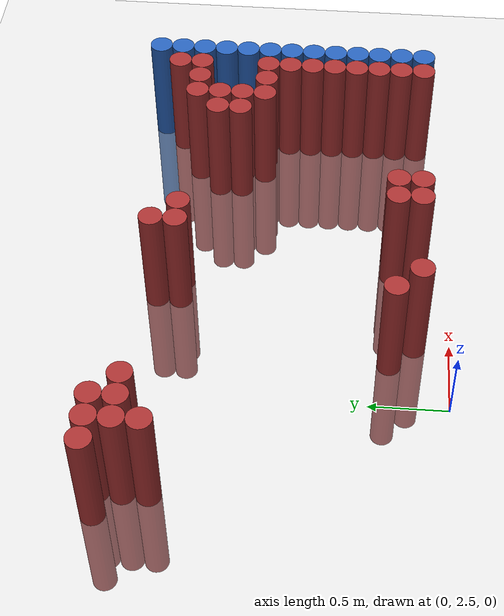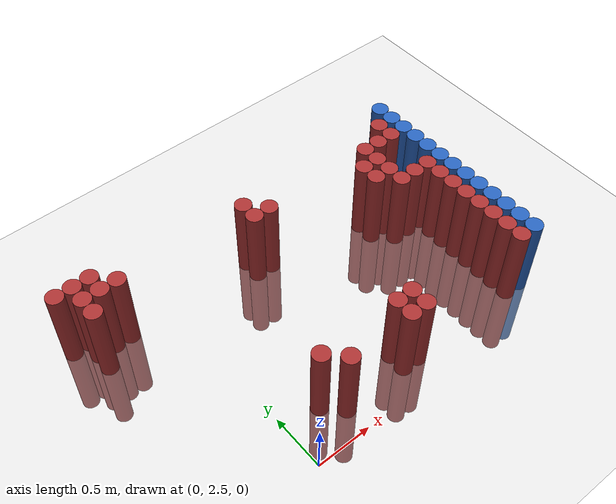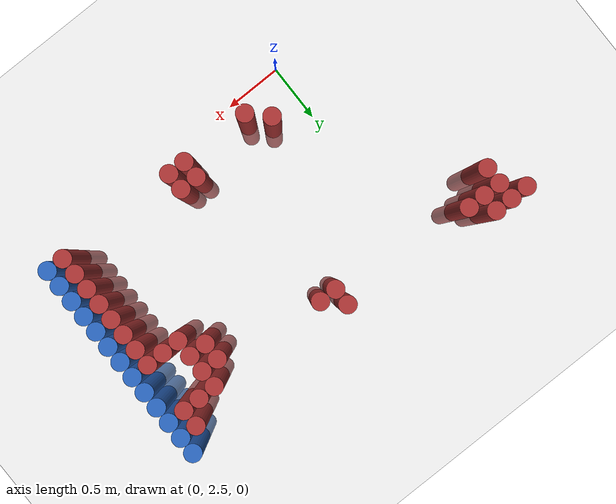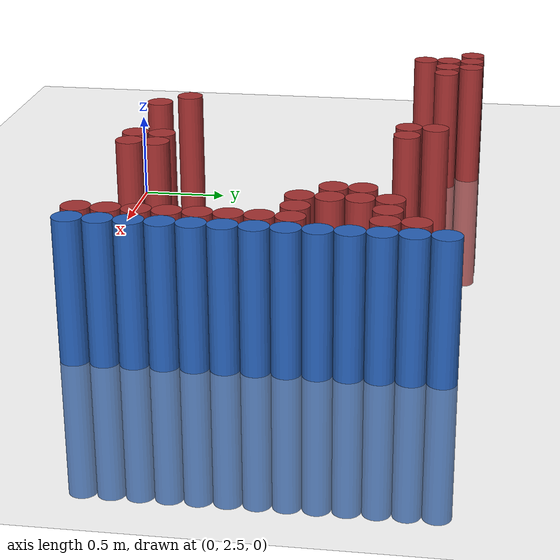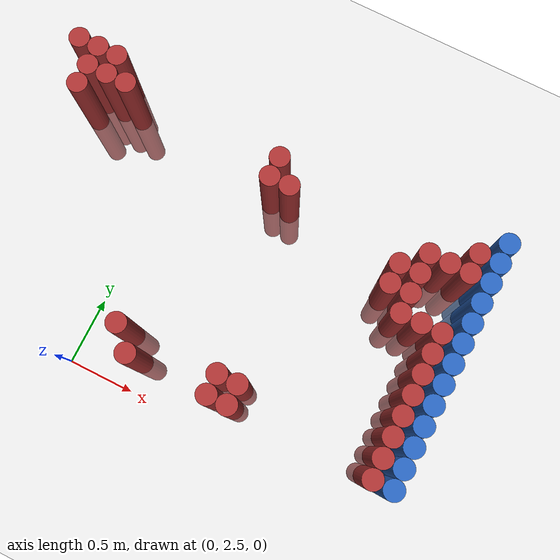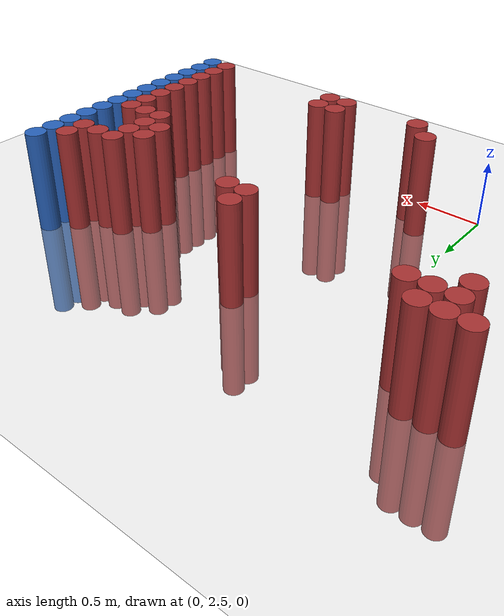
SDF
<sdf version="1.6">
 <world name="default">
  <model name="ground_plane">
   <static>1</static>
   <link name="link">
    <collision name="collision">
     <geometry><plane><normal>0 0 1</normal><size>100 100</size></plane></geometry>
     <surface><friction><ode><mu>100</mu><mu2>50</mu2></ode></friction></surface>
    </collision>
    <visual name="visual">
     <cast_shadows>0</cast_shadows>
     <geometry><plane><normal>0 0 1</normal><size>100 100</size></plane></geometry>
     <material>
      <script><uri>file://media/materials/scripts/gazebo.material</uri><name>Gazebo/Grey</name></script>
     </material>
    </visual>
   </link>
  </model>
  <model name="unit_cylinder_159">
   <static>1</static>
   <pose>-0.875000 4.525000 0.000000 0.000000 0.000000 0.000000</pose>
   <link name="link">
    <inertial>
     <mass>1</mass>
     <inertia><ixx>0.145833</ixx><ixy>0</ixy><ixz>0</ixz><iyy>0.145833</iyy><iyz>0</iyz><izz>0.125</izz></inertia>
    </inertial>
    <collision name="collision">
     <geometry><cylinder><radius>0.075000</radius><length>1.5</length></cylinder></geometry>
    </collision>
    <visual name="visual">
     <geometry><cylinder><radius>0.075000</radius><length>1.5</length></cylinder></geometry>
     <material>
      <ambient>0.648000 0.192000 0.192000 1</ambient>
      <diffuse>0.648000 0.192000 0.192000 1</diffuse>
     </material>
     <material>
      <script><name>Gazebo/Grey</name><uri>file://media/materials/scripts/gazebo.material</uri></script>
     </material>
    </visual>
   </link>
  </model>
  <model name="unit_cylinder_160">
   <static>1</static>
   <pose>-0.725000 4.225000 0.000000 0.000000 0.000000 0.000000</pose>
   <link name="link">
    <inertial>
     <mass>1</mass>
     <inertia><ixx>0.145833</ixx><ixy>0</ixy><ixz>0</ixz><iyy>0.145833</iyy><iyz>0</iyz><izz>0.125</izz></inertia>
    </inertial>
    <collision name="collision">
     <geometry><cylinder><radius>0.075000</radius><length>1.5</length></cylinder></geometry>
    </collision>
    <visual name="visual">
     <geometry><cylinder><radius>0.075000</radius><length>1.5</length></cylinder></geometry>
     <material>
      <ambient>0.648000 0.192000 0.192000 1</ambient>
      <diffuse>0.648000 0.192000 0.192000 1</diffuse>
     </material>
     <material>
      <script><name>Gazebo/Grey</name><uri>file://media/materials/scripts/gazebo.material</uri></script>
     </material>
    </visual>
   </link>
  </model>
  <model name="unit_cylinder_161">
   <static>1</static>
   <pose>-0.725000 4.375000 0.000000 0.000000 0.000000 0.000000</pose>
   <link name="link">
    <inertial>
     <mass>1</mass>
     <inertia><ixx>0.145833</ixx><ixy>0</ixy><ixz>0</ixz><iyy>0.145833</iyy><iyz>0</iyz><izz>0.125</izz></inertia>
    </inertial>
    <collision name="collision">
     <geometry><cylinder><radius>0.075000</radius><length>1.5</length></cylinder></geometry>
    </collision>
    <visual name="visual">
     <geometry><cylinder><radius>0.075000</radius><length>1.5</length></cylinder></geometry>
     <material>
      <ambient>0.648000 0.192000 0.192000 1</ambient>
      <diffuse>0.648000 0.192000 0.192000 1</diffuse>
     </material>
     <material>
      <script><name>Gazebo/Grey</name><uri>file://media/materials/scripts/gazebo.material</uri></script>
     </material>
    </visual>
   </link>
  </model>
  <model name="unit_cylinder_162">
   <static>1</static>
   <pose>-0.725000 4.525000 0.000000 0.000000 0.000000 0.000000</pose>
   <link name="link">
    <inertial>
     <mass>1</mass>
     <inertia><ixx>0.145833</ixx><ixy>0</ixy><ixz>0</ixz><iyy>0.145833</iyy><iyz>0</iyz><izz>0.125</izz></inertia>
    </inertial>
    <collision name="collision">
     <geometry><cylinder><radius>0.075000</radius><length>1.5</length></cylinder></geometry>
    </collision>
    <visual name="visual">
     <geometry><cylinder><radius>0.075000</radius><length>1.5</length></cylinder></geometry>
     <material>
      <ambient>0.648000 0.192000 0.192000 1</ambient>
      <diffuse>0.648000 0.192000 0.192000 1</diffuse>
     </material>
     <material>
      <script><name>Gazebo/Grey</name><uri>file://media/materials/scripts/gazebo.material</uri></script>
     </material>
    </visual>
   </link>
  </model>
  <model name="unit_cylinder_163">
   <static>1</static>
   <pose>-0.575000 4.375000 0.000000 0.000000 0.000000 0.000000</pose>
   <link name="link">
    <inertial>
     <mass>1</mass>
     <inertia><ixx>0.145833</ixx><ixy>0</ixy><ixz>0</ixz><iyy>0.145833</iyy><iyz>0</iyz><izz>0.125</izz></inertia>
    </inertial>
    <collision name="collision">
     <geometry><cylinder><radius>0.075000</radius><length>1.5</length></cylinder></geometry>
    </collision>
    <visual name="visual">
     <geometry><cylinder><radius>0.075000</radius><length>1.5</length></cylinder></geometry>
     <material>
      <ambient>0.648000 0.192000 0.192000 1</ambient>
      <diffuse>0.648000 0.192000 0.192000 1</diffuse>
     </material>
     <material>
      <script><name>Gazebo/Grey</name><uri>file://media/materials/scripts/gazebo.material</uri></script>
     </material>
    </visual>
   </link>
  </model>
  <model name="unit_cylinder_164">
   <static>1</static>
   <pose>-0.575000 4.525000 0.000000 0.000000 0.000000 0.000000</pose>
   <link name="link">
    <inertial>
     <mass>1</mass>
     <inertia><ixx>0.145833</ixx><ixy>0</ixy><ixz>0</ixz><iyy>0.145833</iyy><iyz>0</iyz><izz>0.125</izz></inertia>
    </inertial>
    <collision name="collision">
     <geometry><cylinder><radius>0.075000</radius><length>1.5</length></cylinder></geometry>
    </collision>
    <visual name="visual">
     <geometry><cylinder><radius>0.075000</radius><length>1.5</length></cylinder></geometry>
     <material>
      <ambient>0.648000 0.192000 0.192000 1</ambient>
      <diffuse>0.648000 0.192000 0.192000 1</diffuse>
     </material>
     <material>
      <script><name>Gazebo/Grey</name><uri>file://media/materials/scripts/gazebo.material</uri></script>
     </material>
    </visual>
   </link>
  </model>
  <model name="unit_cylinder_165">
   <static>1</static>
   <pose>-0.425000 4.375000 0.000000 0.000000 0.000000 0.000000</pose>
   <link name="link">
    <inertial>
     <mass>1</mass>
     <inertia><ixx>0.145833</ixx><ixy>0</ixy><ixz>0</ixz><iyy>0.145833</iyy><iyz>0</iyz><izz>0.125</izz></inertia>
    </inertial>
    <collision name="collision">
     <geometry><cylinder><radius>0.075000</radius><length>1.5</length></cylinder></geometry>
    </collision>
    <visual name="visual">
     <geometry><cylinder><radius>0.075000</radius><length>1.5</length></cylinder></geometry>
     <material>
      <ambient>0.648000 0.192000 0.192000 1</ambient>
      <diffuse>0.648000 0.192000 0.192000 1</diffuse>
     </material>
     <material>
      <script><name>Gazebo/Grey</name><uri>file://media/materials/scripts/gazebo.material</uri></script>
     </material>
    </visual>
   </link>
  </model>
  <model name="unit_cylinder_181">
   <static>1</static>
   <pose>0.325000 2.875000 0.000000 0.000000 0.000000 0.000000</pose>
   <link name="link">
    <inertial>
     <mass>1</mass>
     <inertia><ixx>0.145833</ixx><ixy>0</ixy><ixz>0</ixz><iyy>0.145833</iyy><iyz>0</iyz><izz>0.125</izz></inertia>
    </inertial>
    <collision name="collision">
     <geometry><cylinder><radius>0.075000</radius><length>1.5</length></cylinder></geometry>
    </collision>
    <visual name="visual">
     <geometry><cylinder><radius>0.075000</radius><length>1.5</length></cylinder></geometry>
     <material>
      <ambient>0.648000 0.192000 0.192000 1</ambient>
      <diffuse>0.648000 0.192000 0.192000 1</diffuse>
     </material>
     <material>
      <script><name>Gazebo/Grey</name><uri>file://media/materials/scripts/gazebo.material</uri></script>
     </material>
    </visual>
   </link>
  </model>
  <model name="unit_cylinder_184">
   <static>1</static>
   <pose>0.475000 2.725000 0.000000 0.000000 0.000000 0.000000</pose>
   <link name="link">
    <inertial>
     <mass>1</mass>
     <inertia><ixx>0.145833</ixx><ixy>0</ixy><ixz>0</ixz><iyy>0.145833</iyy><iyz>0</iyz><izz>0.125</izz></inertia>
    </inertial>
    <collision name="collision">
     <geometry><cylinder><radius>0.075000</radius><length>1.5</length></cylinder></geometry>
    </collision>
    <visual name="visual">
     <geometry><cylinder><radius>0.075000</radius><length>1.5</length></cylinder></geometry>
     <material>
      <ambient>0.648000 0.192000 0.192000 1</ambient>
      <diffuse>0.648000 0.192000 0.192000 1</diffuse>
     </material>
     <material>
      <script><name>Gazebo/Grey</name><uri>file://media/materials/scripts/gazebo.material</uri></script>
     </material>
    </visual>
   </link>
  </model>
  <model name="unit_cylinder_187">
   <static>1</static>
   <pose>0.775000 4.225000 0.000000 0.000000 0.000000 0.000000</pose>
   <link name="link">
    <inertial>
     <mass>1</mass>
     <inertia><ixx>0.145833</ixx><ixy>0</ixy><ixz>0</ixz><iyy>0.145833</iyy><iyz>0</iyz><izz>0.125</izz></inertia>
    </inertial>
    <collision name="collision">
     <geometry><cylinder><radius>0.075000</radius><length>1.5</length></cylinder></geometry>
    </collision>
    <visual name="visual">
     <geometry><cylinder><radius>0.075000</radius><length>1.5</length></cylinder></geometry>
     <material>
      <ambient>0.648000 0.192000 0.192000 1</ambient>
      <diffuse>0.648000 0.192000 0.192000 1</diffuse>
     </material>
     <material>
      <script><name>Gazebo/Grey</name><uri>file://media/materials/scripts/gazebo.material</uri></script>
     </material>
    </visual>
   </link>
  </model>
  <model name="unit_cylinder_188">
   <static>1</static>
   <pose>0.775000 4.375000 0.000000 0.000000 0.000000 0.000000</pose>
   <link name="link">
    <inertial>
     <mass>1</mass>
     <inertia><ixx>0.145833</ixx><ixy>0</ixy><ixz>0</ixz><iyy>0.145833</iyy><iyz>0</iyz><izz>0.125</izz></inertia>
    </inertial>
    <collision name="collision">
     <geometry><cylinder><radius>0.075000</radius><length>1.5</length></cylinder></geometry>
    </collision>
    <visual name="visual">
     <geometry><cylinder><radius>0.075000</radius><length>1.5</length></cylinder></geometry>
     <material>
      <ambient>0.648000 0.192000 0.192000 1</ambient>
      <diffuse>0.648000 0.192000 0.192000 1</diffuse>
     </material>
     <material>
      <script><name>Gazebo/Grey</name><uri>file://media/materials/scripts/gazebo.material</uri></script>
     </material>
    </visual>
   </link>
  </model>
  <model name="unit_cylinder_189">
   <static>1</static>
   <pose>0.925000 4.225000 0.000000 0.000000 0.000000 0.000000</pose>
   <link name="link">
    <inertial>
     <mass>1</mass>
     <inertia><ixx>0.145833</ixx><ixy>0</ixy><ixz>0</ixz><iyy>0.145833</iyy><iyz>0</iyz><izz>0.125</izz></inertia>
    </inertial>
    <collision name="collision">
     <geometry><cylinder><radius>0.075000</radius><length>1.5</length></cylinder></geometry>
    </collision>
    <visual name="visual">
     <geometry><cylinder><radius>0.075000</radius><length>1.5</length></cylinder></geometry>
     <material>
      <ambient>0.648000 0.192000 0.192000 1</ambient>
      <diffuse>0.648000 0.192000 0.192000 1</diffuse>
     </material>
     <material>
      <script><name>Gazebo/Grey</name><uri>file://media/materials/scripts/gazebo.material</uri></script>
     </material>
    </visual>
   </link>
  </model>
  <model name="unit_cylinder_191">
   <static>1</static>
   <pose>1.075000 2.725000 0.000000 0.000000 0.000000 0.000000</pose>
   <link name="link">
    <inertial>
     <mass>1</mass>
     <inertia><ixx>0.145833</ixx><ixy>0</ixy><ixz>0</ixz><iyy>0.145833</iyy><iyz>0</iyz><izz>0.125</izz></inertia>
    </inertial>
    <collision name="collision">
     <geometry><cylinder><radius>0.075000</radius><length>1.5</length></cylinder></geometry>
    </collision>
    <visual name="visual">
     <geometry><cylinder><radius>0.075000</radius><length>1.5</length></cylinder></geometry>
     <material>
      <ambient>0.648000 0.192000 0.192000 1</ambient>
      <diffuse>0.648000 0.192000 0.192000 1</diffuse>
     </material>
     <material>
      <script><name>Gazebo/Grey</name><uri>file://media/materials/scripts/gazebo.material</uri></script>
     </material>
    </visual>
   </link>
  </model>
  <model name="unit_cylinder_192">
   <static>1</static>
   <pose>1.075000 2.875000 0.000000 0.000000 0.000000 0.000000</pose>
   <link name="link">
    <inertial>
     <mass>1</mass>
     <inertia><ixx>0.145833</ixx><ixy>0</ixy><ixz>0</ixz><iyy>0.145833</iyy><iyz>0</iyz><izz>0.125</izz></inertia>
    </inertial>
    <collision name="collision">
     <geometry><cylinder><radius>0.075000</radius><length>1.5</length></cylinder></geometry>
    </collision>
    <visual name="visual">
     <geometry><cylinder><radius>0.075000</radius><length>1.5</length></cylinder></geometry>
     <material>
      <ambient>0.648000 0.192000 0.192000 1</ambient>
      <diffuse>0.648000 0.192000 0.192000 1</diffuse>
     </material>
     <material>
      <script><name>Gazebo/Grey</name><uri>file://media/materials/scripts/gazebo.material</uri></script>
     </material>
    </visual>
   </link>
  </model>
  <model name="unit_cylinder_199">
   <static>1</static>
   <pose>1.225000 2.725000 0.000000 0.000000 0.000000 0.000000</pose>
   <link name="link">
    <inertial>
     <mass>1</mass>
     <inertia><ixx>0.145833</ixx><ixy>0</ixy><ixz>0</ixz><iyy>0.145833</iyy><iyz>0</iyz><izz>0.125</izz></inertia>
    </inertial>
    <collision name="collision">
     <geometry><cylinder><radius>0.075000</radius><length>1.5</length></cylinder></geometry>
    </collision>
    <visual name="visual">
     <geometry><cylinder><radius>0.075000</radius><length>1.5</length></cylinder></geometry>
     <material>
      <ambient>0.648000 0.192000 0.192000 1</ambient>
      <diffuse>0.648000 0.192000 0.192000 1</diffuse>
     </material>
     <material>
      <script><name>Gazebo/Grey</name><uri>file://media/materials/scripts/gazebo.material</uri></script>
     </material>
    </visual>
   </link>
  </model>
  <model name="unit_cylinder_200">
   <static>1</static>
   <pose>1.225000 2.875000 0.000000 0.000000 0.000000 0.000000</pose>
   <link name="link">
    <inertial>
     <mass>1</mass>
     <inertia><ixx>0.145833</ixx><ixy>0</ixy><ixz>0</ixz><iyy>0.145833</iyy><iyz>0</iyz><izz>0.125</izz></inertia>
    </inertial>
    <collision name="collision">
     <geometry><cylinder><radius>0.075000</radius><length>1.5</length></cylinder></geometry>
    </collision>
    <visual name="visual">
     <geometry><cylinder><radius>0.075000</radius><length>1.5</length></cylinder></geometry>
     <material>
      <ambient>0.648000 0.192000 0.192000 1</ambient>
      <diffuse>0.648000 0.192000 0.192000 1</diffuse>
     </material>
     <material>
      <script><name>Gazebo/Grey</name><uri>file://media/materials/scripts/gazebo.material</uri></script>
     </material>
    </visual>
   </link>
  </model>
  <model name="unit_cylinder_213">
   <static>1</static>
   <pose>1.825000 3.925000 0.000000 0.000000 0.000000 0.000000</pose>
   <link name="link">
    <inertial>
     <mass>1</mass>
     <inertia><ixx>0.145833</ixx><ixy>0</ixy><ixz>0</ixz><iyy>0.145833</iyy><iyz>0</iyz><izz>0.125</izz></inertia>
    </inertial>
    <collision name="collision">
     <geometry><cylinder><radius>0.075000</radius><length>1.5</length></cylinder></geometry>
    </collision>
    <visual name="visual">
     <geometry><cylinder><radius>0.075000</radius><length>1.5</length></cylinder></geometry>
     <material>
      <ambient>0.648000 0.192000 0.192000 1</ambient>
      <diffuse>0.648000 0.192000 0.192000 1</diffuse>
     </material>
     <material>
      <script><name>Gazebo/Grey</name><uri>file://media/materials/scripts/gazebo.material</uri></script>
     </material>
    </visual>
   </link>
  </model>
  <model name="unit_cylinder_214">
   <static>1</static>
   <pose>1.825000 4.075000 0.000000 0.000000 0.000000 0.000000</pose>
   <link name="link">
    <inertial>
     <mass>1</mass>
     <inertia><ixx>0.145833</ixx><ixy>0</ixy><ixz>0</ixz><iyy>0.145833</iyy><iyz>0</iyz><izz>0.125</izz></inertia>
    </inertial>
    <collision name="collision">
     <geometry><cylinder><radius>0.075000</radius><length>1.5</length></cylinder></geometry>
    </collision>
    <visual name="visual">
     <geometry><cylinder><radius>0.075000</radius><length>1.5</length></cylinder></geometry>
     <material>
      <ambient>0.648000 0.192000 0.192000 1</ambient>
      <diffuse>0.648000 0.192000 0.192000 1</diffuse>
     </material>
     <material>
      <script><name>Gazebo/Grey</name><uri>file://media/materials/scripts/gazebo.material</uri></script>
     </material>
    </visual>
   </link>
  </model>
  <model name="unit_cylinder_217">
   <static>1</static>
   <pose>1.975000 3.775000 0.000000 0.000000 0.000000 0.000000</pose>
   <link name="link">
    <inertial>
     <mass>1</mass>
     <inertia><ixx>0.145833</ixx><ixy>0</ixy><ixz>0</ixz><iyy>0.145833</iyy><iyz>0</iyz><izz>0.125</izz></inertia>
    </inertial>
    <collision name="collision">
     <geometry><cylinder><radius>0.075000</radius><length>1.5</length></cylinder></geometry>
    </collision>
    <visual name="visual">
     <geometry><cylinder><radius>0.075000</radius><length>1.5</length></cylinder></geometry>
     <material>
      <ambient>0.648000 0.192000 0.192000 1</ambient>
      <diffuse>0.648000 0.192000 0.192000 1</diffuse>
     </material>
     <material>
      <script><name>Gazebo/Grey</name><uri>file://media/materials/scripts/gazebo.material</uri></script>
     </material>
    </visual>
   </link>
  </model>
  <model name="unit_cylinder_218">
   <static>1</static>
   <pose>1.975000 3.925000 0.000000 0.000000 0.000000 0.000000</pose>
   <link name="link">
    <inertial>
     <mass>1</mass>
     <inertia><ixx>0.145833</ixx><ixy>0</ixy><ixz>0</ixz><iyy>0.145833</iyy><iyz>0</iyz><izz>0.125</izz></inertia>
    </inertial>
    <collision name="collision">
     <geometry><cylinder><radius>0.075000</radius><length>1.5</length></cylinder></geometry>
    </collision>
    <visual name="visual">
     <geometry><cylinder><radius>0.075000</radius><length>1.5</length></cylinder></geometry>
     <material>
      <ambient>0.648000 0.192000 0.192000 1</ambient>
      <diffuse>0.648000 0.192000 0.192000 1</diffuse>
     </material>
     <material>
      <script><name>Gazebo/Grey</name><uri>file://media/materials/scripts/gazebo.material</uri></script>
     </material>
    </visual>
   </link>
  </model>
  <model name="unit_cylinder_219">
   <static>1</static>
   <pose>1.975000 4.075000 0.000000 0.000000 0.000000 0.000000</pose>
   <link name="link">
    <inertial>
     <mass>1</mass>
     <inertia><ixx>0.145833</ixx><ixy>0</ixy><ixz>0</ixz><iyy>0.145833</iyy><iyz>0</iyz><izz>0.125</izz></inertia>
    </inertial>
    <collision name="collision">
     <geometry><cylinder><radius>0.075000</radius><length>1.5</length></cylinder></geometry>
    </collision>
    <visual name="visual">
     <geometry><cylinder><radius>0.075000</radius><length>1.5</length></cylinder></geometry>
     <material>
      <ambient>0.648000 0.192000 0.192000 1</ambient>
      <diffuse>0.648000 0.192000 0.192000 1</diffuse>
     </material>
     <material>
      <script><name>Gazebo/Grey</name><uri>file://media/materials/scripts/gazebo.material</uri></script>
     </material>
    </visual>
   </link>
  </model>
  <model name="unit_cylinder_220">
   <static>1</static>
   <pose>1.975000 4.225000 0.000000 0.000000 0.000000 0.000000</pose>
   <link name="link">
    <inertial>
     <mass>1</mass>
     <inertia><ixx>0.145833</ixx><ixy>0</ixy><ixz>0</ixz><iyy>0.145833</iyy><iyz>0</iyz><izz>0.125</izz></inertia>
    </inertial>
    <collision name="collision">
     <geometry><cylinder><radius>0.075000</radius><length>1.5</length></cylinder></geometry>
    </collision>
    <visual name="visual">
     <geometry><cylinder><radius>0.075000</radius><length>1.5</length></cylinder></geometry>
     <material>
      <ambient>0.648000 0.192000 0.192000 1</ambient>
      <diffuse>0.648000 0.192000 0.192000 1</diffuse>
     </material>
     <material>
      <script><name>Gazebo/Grey</name><uri>file://media/materials/scripts/gazebo.material</uri></script>
     </material>
    </visual>
   </link>
  </model>
  <model name="unit_cylinder_226">
   <static>1</static>
   <pose>2.125000 3.775000 0.000000 0.000000 0.000000 0.000000</pose>
   <link name="link">
    <inertial>
     <mass>1</mass>
     <inertia><ixx>0.145833</ixx><ixy>0</ixy><ixz>0</ixz><iyy>0.145833</iyy><iyz>0</iyz><izz>0.125</izz></inertia>
    </inertial>
    <collision name="collision">
     <geometry><cylinder><radius>0.075000</radius><length>1.5</length></cylinder></geometry>
    </collision>
    <visual name="visual">
     <geometry><cylinder><radius>0.075000</radius><length>1.5</length></cylinder></geometry>
     <material>
      <ambient>0.648000 0.192000 0.192000 1</ambient>
      <diffuse>0.648000 0.192000 0.192000 1</diffuse>
     </material>
     <material>
      <script><name>Gazebo/Grey</name><uri>file://media/materials/scripts/gazebo.material</uri></script>
     </material>
    </visual>
   </link>
  </model>
  <model name="unit_cylinder_227">
   <static>1</static>
   <pose>2.125000 4.225000 0.000000 0.000000 0.000000 0.000000</pose>
   <link name="link">
    <inertial>
     <mass>1</mass>
     <inertia><ixx>0.145833</ixx><ixy>0</ixy><ixz>0</ixz><iyy>0.145833</iyy><iyz>0</iyz><izz>0.125</izz></inertia>
    </inertial>
    <collision name="collision">
     <geometry><cylinder><radius>0.075000</radius><length>1.5</length></cylinder></geometry>
    </collision>
    <visual name="visual">
     <geometry><cylinder><radius>0.075000</radius><length>1.5</length></cylinder></geometry>
     <material>
      <ambient>0.648000 0.192000 0.192000 1</ambient>
      <diffuse>0.648000 0.192000 0.192000 1</diffuse>
     </material>
     <material>
      <script><name>Gazebo/Grey</name><uri>file://media/materials/scripts/gazebo.material</uri></script>
     </material>
    </visual>
   </link>
  </model>
  <model name="unit_cylinder_242">
   <static>1</static>
   <pose>2.275000 2.725000 0.000000 0.000000 0.000000 0.000000</pose>
   <link name="link">
    <inertial>
     <mass>1</mass>
     <inertia><ixx>0.145833</ixx><ixy>0</ixy><ixz>0</ixz><iyy>0.145833</iyy><iyz>0</iyz><izz>0.125</izz></inertia>
    </inertial>
    <collision name="collision">
     <geometry><cylinder><radius>0.075000</radius><length>1.5</length></cylinder></geometry>
    </collision>
    <visual name="visual">
     <geometry><cylinder><radius>0.075000</radius><length>1.5</length></cylinder></geometry>
     <material>
      <ambient>0.648000 0.192000 0.192000 1</ambient>
      <diffuse>0.648000 0.192000 0.192000 1</diffuse>
     </material>
     <material>
      <script><name>Gazebo/Grey</name><uri>file://media/materials/scripts/gazebo.material</uri></script>
     </material>
    </visual>
   </link>
  </model>
  <model name="unit_cylinder_243">
   <static>1</static>
   <pose>2.275000 2.875000 0.000000 0.000000 0.000000 0.000000</pose>
   <link name="link">
    <inertial>
     <mass>1</mass>
     <inertia><ixx>0.145833</ixx><ixy>0</ixy><ixz>0</ixz><iyy>0.145833</iyy><iyz>0</iyz><izz>0.125</izz></inertia>
    </inertial>
    <collision name="collision">
     <geometry><cylinder><radius>0.075000</radius><length>1.5</length></cylinder></geometry>
    </collision>
    <visual name="visual">
     <geometry><cylinder><radius>0.075000</radius><length>1.5</length></cylinder></geometry>
     <material>
      <ambient>0.648000 0.192000 0.192000 1</ambient>
      <diffuse>0.648000 0.192000 0.192000 1</diffuse>
     </material>
     <material>
      <script><name>Gazebo/Grey</name><uri>file://media/materials/scripts/gazebo.material</uri></script>
     </material>
    </visual>
   </link>
  </model>
  <model name="unit_cylinder_244">
   <static>1</static>
   <pose>2.275000 3.025000 0.000000 0.000000 0.000000 0.000000</pose>
   <link name="link">
    <inertial>
     <mass>1</mass>
     <inertia><ixx>0.145833</ixx><ixy>0</ixy><ixz>0</ixz><iyy>0.145833</iyy><iyz>0</iyz><izz>0.125</izz></inertia>
    </inertial>
    <collision name="collision">
     <geometry><cylinder><radius>0.075000</radius><length>1.5</length></cylinder></geometry>
    </collision>
    <visual name="visual">
     <geometry><cylinder><radius>0.075000</radius><length>1.5</length></cylinder></geometry>
     <material>
      <ambient>0.648000 0.192000 0.192000 1</ambient>
      <diffuse>0.648000 0.192000 0.192000 1</diffuse>
     </material>
     <material>
      <script><name>Gazebo/Grey</name><uri>file://media/materials/scripts/gazebo.material</uri></script>
     </material>
    </visual>
   </link>
  </model>
  <model name="unit_cylinder_245">
   <static>1</static>
   <pose>2.275000 3.175000 0.000000 0.000000 0.000000 0.000000</pose>
   <link name="link">
    <inertial>
     <mass>1</mass>
     <inertia><ixx>0.145833</ixx><ixy>0</ixy><ixz>0</ixz><iyy>0.145833</iyy><iyz>0</iyz><izz>0.125</izz></inertia>
    </inertial>
    <collision name="collision">
     <geometry><cylinder><radius>0.075000</radius><length>1.5</length></cylinder></geometry>
    </collision>
    <visual name="visual">
     <geometry><cylinder><radius>0.075000</radius><length>1.5</length></cylinder></geometry>
     <material>
      <ambient>0.648000 0.192000 0.192000 1</ambient>
      <diffuse>0.648000 0.192000 0.192000 1</diffuse>
     </material>
     <material>
      <script><name>Gazebo/Grey</name><uri>file://media/materials/scripts/gazebo.material</uri></script>
     </material>
    </visual>
   </link>
  </model>
  <model name="unit_cylinder_246">
   <static>1</static>
   <pose>2.275000 3.325000 0.000000 0.000000 0.000000 0.000000</pose>
   <link name="link">
    <inertial>
     <mass>1</mass>
     <inertia><ixx>0.145833</ixx><ixy>0</ixy><ixz>0</ixz><iyy>0.145833</iyy><iyz>0</iyz><izz>0.125</izz></inertia>
    </inertial>
    <collision name="collision">
     <geometry><cylinder><radius>0.075000</radius><length>1.5</length></cylinder></geometry>
    </collision>
    <visual name="visual">
     <geometry><cylinder><radius>0.075000</radius><length>1.5</length></cylinder></geometry>
     <material>
      <ambient>0.648000 0.192000 0.192000 1</ambient>
      <diffuse>0.648000 0.192000 0.192000 1</diffuse>
     </material>
     <material>
      <script><name>Gazebo/Grey</name><uri>file://media/materials/scripts/gazebo.material</uri></script>
     </material>
    </visual>
   </link>
  </model>
  <model name="unit_cylinder_247">
   <static>1</static>
   <pose>2.275000 3.475000 0.000000 0.000000 0.000000 0.000000</pose>
   <link name="link">
    <inertial>
     <mass>1</mass>
     <inertia><ixx>0.145833</ixx><ixy>0</ixy><ixz>0</ixz><iyy>0.145833</iyy><iyz>0</iyz><izz>0.125</izz></inertia>
    </inertial>
    <collision name="collision">
     <geometry><cylinder><radius>0.075000</radius><length>1.5</length></cylinder></geometry>
    </collision>
    <visual name="visual">
     <geometry><cylinder><radius>0.075000</radius><length>1.5</length></cylinder></geometry>
     <material>
      <ambient>0.648000 0.192000 0.192000 1</ambient>
      <diffuse>0.648000 0.192000 0.192000 1</diffuse>
     </material>
     <material>
      <script><name>Gazebo/Grey</name><uri>file://media/materials/scripts/gazebo.material</uri></script>
     </material>
    </visual>
   </link>
  </model>
  <model name="unit_cylinder_248">
   <static>1</static>
   <pose>2.275000 3.625000 0.000000 0.000000 0.000000 0.000000</pose>
   <link name="link">
    <inertial>
     <mass>1</mass>
     <inertia><ixx>0.145833</ixx><ixy>0</ixy><ixz>0</ixz><iyy>0.145833</iyy><iyz>0</iyz><izz>0.125</izz></inertia>
    </inertial>
    <collision name="collision">
     <geometry><cylinder><radius>0.075000</radius><length>1.5</length></cylinder></geometry>
    </collision>
    <visual name="visual">
     <geometry><cylinder><radius>0.075000</radius><length>1.5</length></cylinder></geometry>
     <material>
      <ambient>0.648000 0.192000 0.192000 1</ambient>
      <diffuse>0.648000 0.192000 0.192000 1</diffuse>
     </material>
     <material>
      <script><name>Gazebo/Grey</name><uri>file://media/materials/scripts/gazebo.material</uri></script>
     </material>
    </visual>
   </link>
  </model>
  <model name="unit_cylinder_249">
   <static>1</static>
   <pose>2.275000 3.775000 0.000000 0.000000 0.000000 0.000000</pose>
   <link name="link">
    <inertial>
     <mass>1</mass>
     <inertia><ixx>0.145833</ixx><ixy>0</ixy><ixz>0</ixz><iyy>0.145833</iyy><iyz>0</iyz><izz>0.125</izz></inertia>
    </inertial>
    <collision name="collision">
     <geometry><cylinder><radius>0.075000</radius><length>1.5</length></cylinder></geometry>
    </collision>
    <visual name="visual">
     <geometry><cylinder><radius>0.075000</radius><length>1.5</length></cylinder></geometry>
     <material>
      <ambient>0.648000 0.192000 0.192000 1</ambient>
      <diffuse>0.648000 0.192000 0.192000 1</diffuse>
     </material>
     <material>
      <script><name>Gazebo/Grey</name><uri>file://media/materials/scripts/gazebo.material</uri></script>
     </material>
    </visual>
   </link>
  </model>
  <model name="unit_cylinder_250">
   <static>1</static>
   <pose>2.275000 4.225000 0.000000 0.000000 0.000000 0.000000</pose>
   <link name="link">
    <inertial>
     <mass>1</mass>
     <inertia><ixx>0.145833</ixx><ixy>0</ixy><ixz>0</ixz><iyy>0.145833</iyy><iyz>0</iyz><izz>0.125</izz></inertia>
    </inertial>
    <collision name="collision">
     <geometry><cylinder><radius>0.075000</radius><length>1.5</length></cylinder></geometry>
    </collision>
    <visual name="visual">
     <geometry><cylinder><radius>0.075000</radius><length>1.5</length></cylinder></geometry>
     <material>
      <ambient>0.648000 0.192000 0.192000 1</ambient>
      <diffuse>0.648000 0.192000 0.192000 1</diffuse>
     </material>
     <material>
      <script><name>Gazebo/Grey</name><uri>file://media/materials/scripts/gazebo.material</uri></script>
     </material>
    </visual>
   </link>
  </model>
  <model name="unit_cylinder_251">
   <static>1</static>
   <pose>2.275000 4.375000 0.000000 0.000000 0.000000 0.000000</pose>
   <link name="link">
    <inertial>
     <mass>1</mass>
     <inertia><ixx>0.145833</ixx><ixy>0</ixy><ixz>0</ixz><iyy>0.145833</iyy><iyz>0</iyz><izz>0.125</izz></inertia>
    </inertial>
    <collision name="collision">
     <geometry><cylinder><radius>0.075000</radius><length>1.5</length></cylinder></geometry>
    </collision>
    <visual name="visual">
     <geometry><cylinder><radius>0.075000</radius><length>1.5</length></cylinder></geometry>
     <material>
      <ambient>0.648000 0.192000 0.192000 1</ambient>
      <diffuse>0.648000 0.192000 0.192000 1</diffuse>
     </material>
     <material>
      <script><name>Gazebo/Grey</name><uri>file://media/materials/scripts/gazebo.material</uri></script>
     </material>
    </visual>
   </link>
  </model>
  <model name="unit_cylinder_269">
   <static>1</static>
   <pose>2.425000 2.725000 0.000000 0.000000 0.000000 0.000000</pose>
   <link name="link">
    <inertial>
     <mass>1</mass>
     <inertia><ixx>0.145833</ixx><ixy>0</ixy><ixz>0</ixz><iyy>0.145833</iyy><iyz>0</iyz><izz>0.125</izz></inertia>
    </inertial>
    <collision name="collision">
     <geometry><cylinder><radius>0.075000</radius><length>1.5</length></cylinder></geometry>
    </collision>
    <visual name="visual">
     <geometry><cylinder><radius>0.075000</radius><length>1.5</length></cylinder></geometry>
     <material>
      <ambient>0.152000 0.379000 0.720000 1</ambient>
      <diffuse>0.152000 0.379000 0.720000 1</diffuse>
     </material>
     <material>
      <script><name>Gazebo/Grey</name><uri>file://media/materials/scripts/gazebo.material</uri></script>
     </material>
    </visual>
   </link>
  </model>
  <model name="unit_cylinder_270">
   <static>1</static>
   <pose>2.425000 2.875000 0.000000 0.000000 0.000000 0.000000</pose>
   <link name="link">
    <inertial>
     <mass>1</mass>
     <inertia><ixx>0.145833</ixx><ixy>0</ixy><ixz>0</ixz><iyy>0.145833</iyy><iyz>0</iyz><izz>0.125</izz></inertia>
    </inertial>
    <collision name="collision">
     <geometry><cylinder><radius>0.075000</radius><length>1.5</length></cylinder></geometry>
    </collision>
    <visual name="visual">
     <geometry><cylinder><radius>0.075000</radius><length>1.5</length></cylinder></geometry>
     <material>
      <ambient>0.152000 0.379000 0.720000 1</ambient>
      <diffuse>0.152000 0.379000 0.720000 1</diffuse>
     </material>
     <material>
      <script><name>Gazebo/Grey</name><uri>file://media/materials/scripts/gazebo.material</uri></script>
     </material>
    </visual>
   </link>
  </model>
  <model name="unit_cylinder_271">
   <static>1</static>
   <pose>2.425000 3.025000 0.000000 0.000000 0.000000 0.000000</pose>
   <link name="link">
    <inertial>
     <mass>1</mass>
     <inertia><ixx>0.145833</ixx><ixy>0</ixy><ixz>0</ixz><iyy>0.145833</iyy><iyz>0</iyz><izz>0.125</izz></inertia>
    </inertial>
    <collision name="collision">
     <geometry><cylinder><radius>0.075000</radius><length>1.5</length></cylinder></geometry>
    </collision>
    <visual name="visual">
     <geometry><cylinder><radius>0.075000</radius><length>1.5</length></cylinder></geometry>
     <material>
      <ambient>0.152000 0.379000 0.720000 1</ambient>
      <diffuse>0.152000 0.379000 0.720000 1</diffuse>
     </material>
     <material>
      <script><name>Gazebo/Grey</name><uri>file://media/materials/scripts/gazebo.material</uri></script>
     </material>
    </visual>
   </link>
  </model>
  <model name="unit_cylinder_272">
   <static>1</static>
   <pose>2.425000 3.175000 0.000000 0.000000 0.000000 0.000000</pose>
   <link name="link">
    <inertial>
     <mass>1</mass>
     <inertia><ixx>0.145833</ixx><ixy>0</ixy><ixz>0</ixz><iyy>0.145833</iyy><iyz>0</iyz><izz>0.125</izz></inertia>
    </inertial>
    <collision name="collision">
     <geometry><cylinder><radius>0.075000</radius><length>1.5</length></cylinder></geometry>
    </collision>
    <visual name="visual">
     <geometry><cylinder><radius>0.075000</radius><length>1.5</length></cylinder></geometry>
     <material>
      <ambient>0.152000 0.379000 0.720000 1</ambient>
      <diffuse>0.152000 0.379000 0.720000 1</diffuse>
     </material>
     <material>
      <script><name>Gazebo/Grey</name><uri>file://media/materials/scripts/gazebo.material</uri></script>
     </material>
    </visual>
   </link>
  </model>
  <model name="unit_cylinder_273">
   <static>1</static>
   <pose>2.425000 3.325000 0.000000 0.000000 0.000000 0.000000</pose>
   <link name="link">
    <inertial>
     <mass>1</mass>
     <inertia><ixx>0.145833</ixx><ixy>0</ixy><ixz>0</ixz><iyy>0.145833</iyy><iyz>0</iyz><izz>0.125</izz></inertia>
    </inertial>
    <collision name="collision">
     <geometry><cylinder><radius>0.075000</radius><length>1.5</length></cylinder></geometry>
    </collision>
    <visual name="visual">
     <geometry><cylinder><radius>0.075000</radius><length>1.5</length></cylinder></geometry>
     <material>
      <ambient>0.152000 0.379000 0.720000 1</ambient>
      <diffuse>0.152000 0.379000 0.720000 1</diffuse>
     </material>
     <material>
      <script><name>Gazebo/Grey</name><uri>file://media/materials/scripts/gazebo.material</uri></script>
     </material>
    </visual>
   </link>
  </model>
  <model name="unit_cylinder_274">
   <static>1</static>
   <pose>2.425000 3.475000 0.000000 0.000000 0.000000 0.000000</pose>
   <link name="link">
    <inertial>
     <mass>1</mass>
     <inertia><ixx>0.145833</ixx><ixy>0</ixy><ixz>0</ixz><iyy>0.145833</iyy><iyz>0</iyz><izz>0.125</izz></inertia>
    </inertial>
    <collision name="collision">
     <geometry><cylinder><radius>0.075000</radius><length>1.5</length></cylinder></geometry>
    </collision>
    <visual name="visual">
     <geometry><cylinder><radius>0.075000</radius><length>1.5</length></cylinder></geometry>
     <material>
      <ambient>0.152000 0.379000 0.720000 1</ambient>
      <diffuse>0.152000 0.379000 0.720000 1</diffuse>
     </material>
     <material>
      <script><name>Gazebo/Grey</name><uri>file://media/materials/scripts/gazebo.material</uri></script>
     </material>
    </visual>
   </link>
  </model>
  <model name="unit_cylinder_275">
   <static>1</static>
   <pose>2.425000 3.625000 0.000000 0.000000 0.000000 0.000000</pose>
   <link name="link">
    <inertial>
     <mass>1</mass>
     <inertia><ixx>0.145833</ixx><ixy>0</ixy><ixz>0</ixz><iyy>0.145833</iyy><iyz>0</iyz><izz>0.125</izz></inertia>
    </inertial>
    <collision name="collision">
     <geometry><cylinder><radius>0.075000</radius><length>1.5</length></cylinder></geometry>
    </collision>
    <visual name="visual">
     <geometry><cylinder><radius>0.075000</radius><length>1.5</length></cylinder></geometry>
     <material>
      <ambient>0.152000 0.379000 0.720000 1</ambient>
      <diffuse>0.152000 0.379000 0.720000 1</diffuse>
     </material>
     <material>
      <script><name>Gazebo/Grey</name><uri>file://media/materials/scripts/gazebo.material</uri></script>
     </material>
    </visual>
   </link>
  </model>
  <model name="unit_cylinder_276">
   <static>1</static>
   <pose>2.425000 3.775000 0.000000 0.000000 0.000000 0.000000</pose>
   <link name="link">
    <inertial>
     <mass>1</mass>
     <inertia><ixx>0.145833</ixx><ixy>0</ixy><ixz>0</ixz><iyy>0.145833</iyy><iyz>0</iyz><izz>0.125</izz></inertia>
    </inertial>
    <collision name="collision">
     <geometry><cylinder><radius>0.075000</radius><length>1.5</length></cylinder></geometry>
    </collision>
    <visual name="visual">
     <geometry><cylinder><radius>0.075000</radius><length>1.5</length></cylinder></geometry>
     <material>
      <ambient>0.152000 0.379000 0.720000 1</ambient>
      <diffuse>0.152000 0.379000 0.720000 1</diffuse>
     </material>
     <material>
      <script><name>Gazebo/Grey</name><uri>file://media/materials/scripts/gazebo.material</uri></script>
     </material>
    </visual>
   </link>
  </model>
  <model name="unit_cylinder_277">
   <static>1</static>
   <pose>2.425000 3.925000 0.000000 0.000000 0.000000 0.000000</pose>
   <link name="link">
    <inertial>
     <mass>1</mass>
     <inertia><ixx>0.145833</ixx><ixy>0</ixy><ixz>0</ixz><iyy>0.145833</iyy><iyz>0</iyz><izz>0.125</izz></inertia>
    </inertial>
    <collision name="collision">
     <geometry><cylinder><radius>0.075000</radius><length>1.5</length></cylinder></geometry>
    </collision>
    <visual name="visual">
     <geometry><cylinder><radius>0.075000</radius><length>1.5</length></cylinder></geometry>
     <material>
      <ambient>0.152000 0.379000 0.720000 1</ambient>
      <diffuse>0.152000 0.379000 0.720000 1</diffuse>
     </material>
     <material>
      <script><name>Gazebo/Grey</name><uri>file://media/materials/scripts/gazebo.material</uri></script>
     </material>
    </visual>
   </link>
  </model>
  <model name="unit_cylinder_278">
   <static>1</static>
   <pose>2.425000 4.075000 0.000000 0.000000 0.000000 0.000000</pose>
   <link name="link">
    <inertial>
     <mass>1</mass>
     <inertia><ixx>0.145833</ixx><ixy>0</ixy><ixz>0</ixz><iyy>0.145833</iyy><iyz>0</iyz><izz>0.125</izz></inertia>
    </inertial>
    <collision name="collision">
     <geometry><cylinder><radius>0.075000</radius><length>1.5</length></cylinder></geometry>
    </collision>
    <visual name="visual">
     <geometry><cylinder><radius>0.075000</radius><length>1.5</length></cylinder></geometry>
     <material>
      <ambient>0.152000 0.379000 0.720000 1</ambient>
      <diffuse>0.152000 0.379000 0.720000 1</diffuse>
     </material>
     <material>
      <script><name>Gazebo/Grey</name><uri>file://media/materials/scripts/gazebo.material</uri></script>
     </material>
    </visual>
   </link>
  </model>
  <model name="unit_cylinder_279">
   <static>1</static>
   <pose>2.425000 4.225000 0.000000 0.000000 0.000000 0.000000</pose>
   <link name="link">
    <inertial>
     <mass>1</mass>
     <inertia><ixx>0.145833</ixx><ixy>0</ixy><ixz>0</ixz><iyy>0.145833</iyy><iyz>0</iyz><izz>0.125</izz></inertia>
    </inertial>
    <collision name="collision">
     <geometry><cylinder><radius>0.075000</radius><length>1.5</length></cylinder></geometry>
    </collision>
    <visual name="visual">
     <geometry><cylinder><radius>0.075000</radius><length>1.5</length></cylinder></geometry>
     <material>
      <ambient>0.152000 0.379000 0.720000 1</ambient>
      <diffuse>0.152000 0.379000 0.720000 1</diffuse>
     </material>
     <material>
      <script><name>Gazebo/Grey</name><uri>file://media/materials/scripts/gazebo.material</uri></script>
     </material>
    </visual>
   </link>
  </model>
  <model name="unit_cylinder_280">
   <static>1</static>
   <pose>2.425000 4.375000 0.000000 0.000000 0.000000 0.000000</pose>
   <link name="link">
    <inertial>
     <mass>1</mass>
     <inertia><ixx>0.145833</ixx><ixy>0</ixy><ixz>0</ixz><iyy>0.145833</iyy><iyz>0</iyz><izz>0.125</izz></inertia>
    </inertial>
    <collision name="collision">
     <geometry><cylinder><radius>0.075000</radius><length>1.5</length></cylinder></geometry>
    </collision>
    <visual name="visual">
     <geometry><cylinder><radius>0.075000</radius><length>1.5</length></cylinder></geometry>
     <material>
      <ambient>0.152000 0.379000 0.720000 1</ambient>
      <diffuse>0.152000 0.379000 0.720000 1</diffuse>
     </material>
     <material>
      <script><name>Gazebo/Grey</name><uri>file://media/materials/scripts/gazebo.material</uri></script>
     </material>
    </visual>
   </link>
  </model>
  <model name="unit_cylinder_281">
   <static>1</static>
   <pose>2.425000 4.525000 0.000000 0.000000 0.000000 0.000000</pose>
   <link name="link">
    <inertial>
     <mass>1</mass>
     <inertia><ixx>0.145833</ixx><ixy>0</ixy><ixz>0</ixz><iyy>0.145833</iyy><iyz>0</iyz><izz>0.125</izz></inertia>
    </inertial>
    <collision name="collision">
     <geometry><cylinder><radius>0.075000</radius><length>1.5</length></cylinder></geometry>
    </collision>
    <visual name="visual">
     <geometry><cylinder><radius>0.075000</radius><length>1.5</length></cylinder></geometry>
     <material>
      <ambient>0.152000 0.379000 0.720000 1</ambient>
      <diffuse>0.152000 0.379000 0.720000 1</diffuse>
     </material>
     <material>
      <script><name>Gazebo/Grey</name><uri>file://media/materials/scripts/gazebo.material</uri></script>
     </material>
    </visual>
   </link>
  </model>
 </world>
</sdf>
